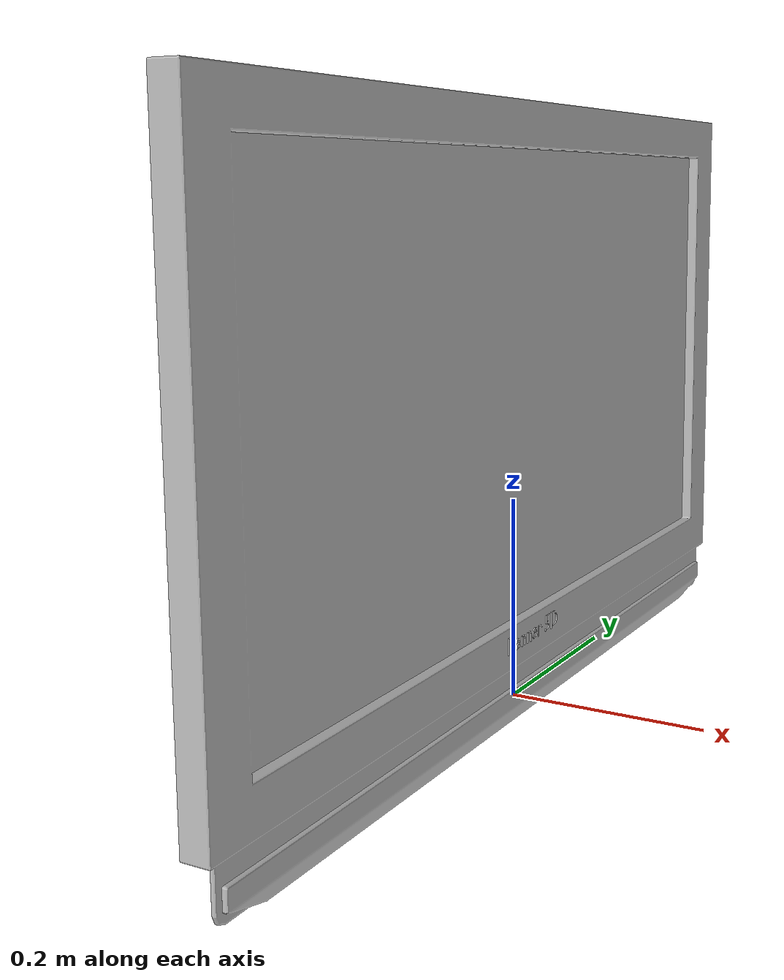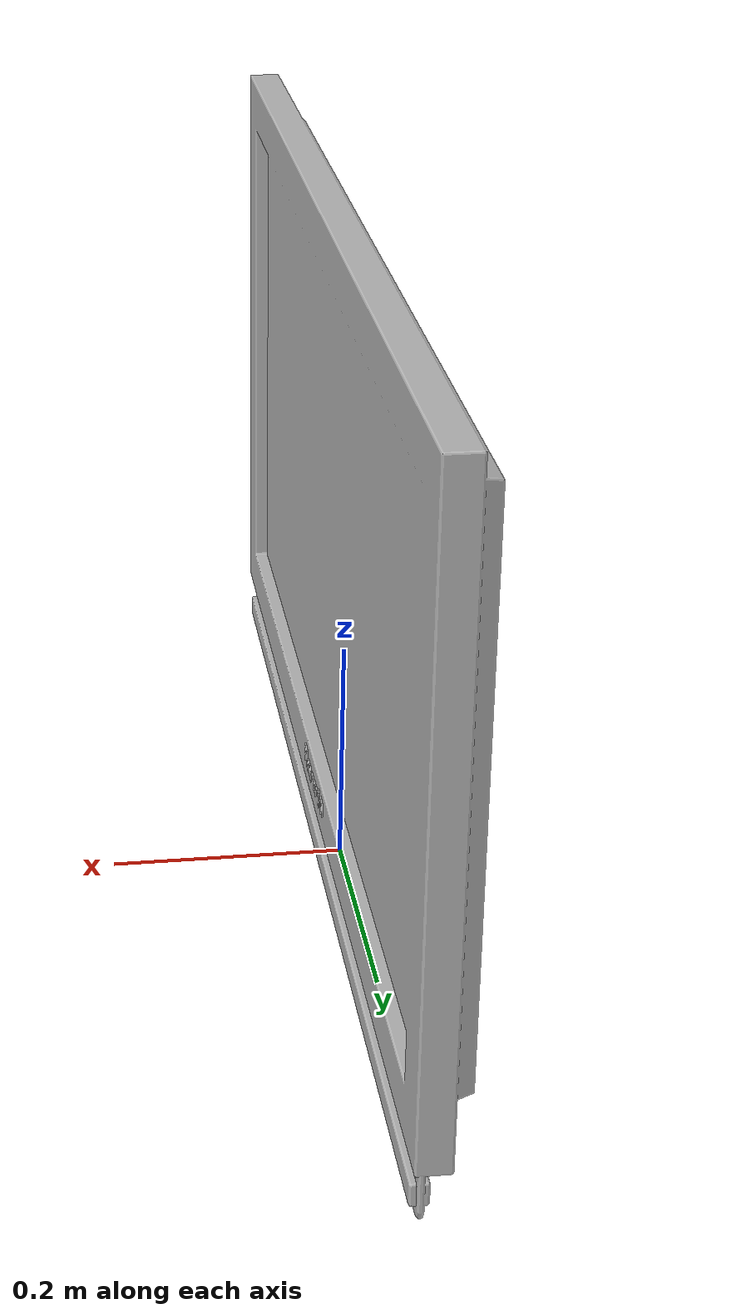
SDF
<?xml version='1.0'?>
<sdf version='1.4'>
  <model name='215'>
    <pose>0 0 0 0 0 0</pose>
    <static>true</static>
    <link name='link'>
      <collision name='collision'>
        <pose>0 0 0 0 0 0</pose>
        <geometry>
          <box>
            <size>0.0500748 0.979999 2</size>
          </box>
        </geometry>
      </collision>
      <visual name='visual'>
        <pose>0 0 0 0 0 0</pose>
        <geometry>
          <mesh><uri>model://215/215.dae</uri></mesh>
        </geometry>
      </visual>
    </link>
  </model>
</sdf>
